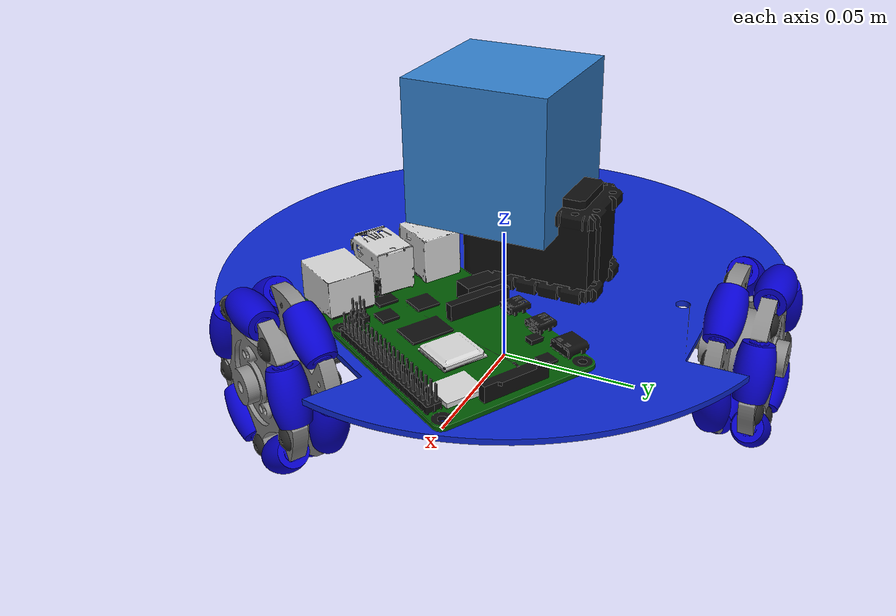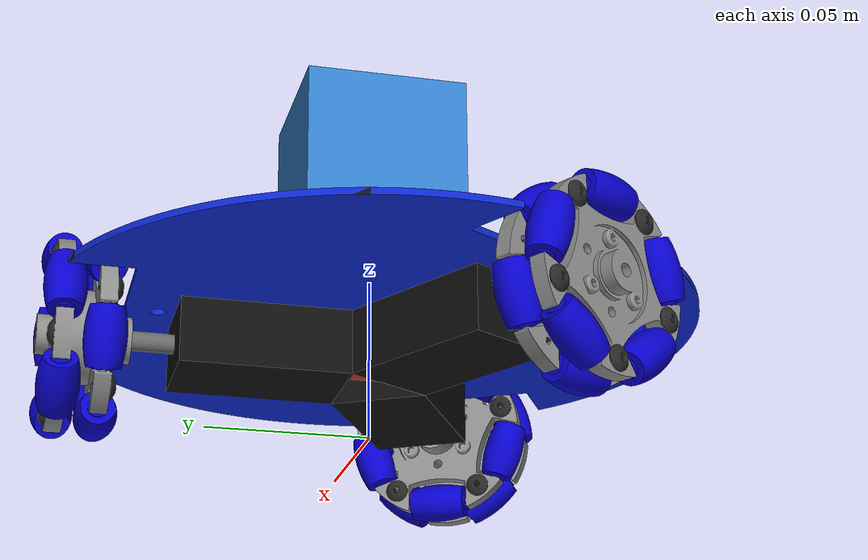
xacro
<?xml version="1.0"?>
<robot xmlns:xacro="http://www.ros.org/wiki/xacro" name="omni_with_front_cam_imu">
  <xacro:arg name="sensor_namespace" default="omni"/>
  <xacro:include filename="$(find simple_rbt)/model/omni/omni_robot.urdf.xacro"/>
  <xacro:include filename="$(find simple_rbt)/model/sensor/simple_front_cam_imu/model.xacro"/>
  <xacro:simple_front_cam_imu parent_link="base_link" xyz="0.0 0.0 0.05" rpy="0 0 0" sensor_namespace="$(arg sensor_namespace)" />
</robot>

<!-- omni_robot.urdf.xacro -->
<robot name="omni_robot" xmlns:xacro="http://ros.org/wiki/xacro">

  <!-- xacro property -->
  <xacro:property name="M_PI" value="3.14159274"/>

  <!-- xacro include file -->
  <xacro:include filename="$(find simple_rbt)/model/omni/urdf/base/base.urdf.xacro"/>  <!--base-->
  <xacro:include filename="$(find simple_rbt)/model/omni/urdf/omni_wheel/omni_wheel.urdf.xacro"/>   <!--omni-wheel-->
  <xacro:include filename="$(find simple_rbt)/model/omni/urdf/roller/roller.urdf.xacro"/>   <!--roller-->

  <!-- =============== Link & Joint =============== -->
  <!-- Base -->
  <link name="base_footprint"/>
  <xacro:base_v0 parent="base_footprint">
        <origin xyz="0 0 0.035" rpy="0 0 0" />
  </xacro:base_v0>

  <!-- Wheel -->
  <!-- 1st wheel -->
  <xacro:wheel_v0 prefix="first" parent="base_link">
	<origin xyz="0 0.088 -0.01" rpy="0 0 3.141593"/>
	<axis xyz="0 1 0"/>
  </xacro:wheel_v0>

  <xacro:roller_v0 prefix="r1_F" parent="first_wheel_link">
	<origin xyz="0 -0.006 0.024063" rpy="0 0 1.570796"/>
	<axis xyz="0 1 0"/>
  </xacro:roller_v0>
  <xacro:roller_v0 prefix="r2_F" parent="first_wheel_link">
	<origin xyz="-0.0228853 -0.006 0.0074359" rpy="-1.256637 0 1.570796"/>
	<axis xyz="0 1 0"/>
  </xacro:roller_v0>
  <xacro:roller_v0 prefix="r3_F" parent="first_wheel_link">
	<origin xyz="-0.0141439 -0.006 -0.0194674" rpy="-2.513274 0 1.570796"/>
	<axis xyz="0 1 0"/>
  </xacro:roller_v0>
  <xacro:roller_v0 prefix="r4_F" parent="first_wheel_link">
	<origin xyz="0.0141439 -0.006 -0.0194674" rpy="-3.769911 0 1.570796"/>
	<axis xyz="0 1 0"/>
  </xacro:roller_v0>
  <xacro:roller_v0 prefix="r5_F" parent="first_wheel_link">
	<origin xyz="0.0228853 -0.006 0.0074359" rpy="-5.026548 0 1.570796"/>
	<axis xyz="0 1 0"/>
  </xacro:roller_v0>

  <xacro:roller_v0 prefix="r6_F" parent="first_wheel_link">
	<origin xyz="0 0.006 -0.024063" rpy="0 0 1.570796"/>
	<axis xyz="0 1 0"/>
  </xacro:roller_v0>
  <xacro:roller_v0 prefix="r7_F" parent="first_wheel_link">
	<origin xyz="0.0228853 0.006 -0.0074359" rpy="-1.256637 0 1.570796"/>
	<axis xyz="0 1 0"/>
  </xacro:roller_v0>
  <xacro:roller_v0 prefix="r8_F" parent="first_wheel_link">
	<origin xyz="0.0141439 0.006 0.0194674" rpy="-2.513274 0 1.570796"/>
	<axis xyz="0 1 0"/>
  </xacro:roller_v0>
  <xacro:roller_v0 prefix="r9_F" parent="first_wheel_link">
	<origin xyz="-0.0141439 0.006 0.0194674" rpy="-3.769911 0 1.570796"/>
	<axis xyz="0 1 0"/>
  </xacro:roller_v0>
  <xacro:roller_v0 prefix="r10_F" parent="first_wheel_link">
	<origin xyz="-0.0228853 0.006 -0.0074359" rpy="-5.026548 0 1.570796"/>
	<axis xyz="0 1 0"/>
  </xacro:roller_v0>

  <!-- 2nd wheel -->
  <xacro:wheel_v0 prefix="second" parent="base_link">
	<origin xyz="-0.0762 -0.044 -0.01" rpy="0 0 5.235988" />
	<axis xyz="0 1 0"/>
  </xacro:wheel_v0>

  <xacro:roller_v0 prefix="r1_S" parent="second_wheel_link">
	<origin xyz="0 -0.006 0.024063" rpy="0 0 1.570796"/>
	<axis xyz="0 1 0"/>
  </xacro:roller_v0>
  <xacro:roller_v0 prefix="r2_S" parent="second_wheel_link">
	<origin xyz="-0.0228853 -0.006 0.0074359" rpy="-1.256637 0 1.570796"/>
	<axis xyz="0 1 0"/>
  </xacro:roller_v0>
  <xacro:roller_v0 prefix="r3_S" parent="second_wheel_link">
	<origin xyz="-0.0141439 -0.006 -0.0194674" rpy="-2.513274 0 1.570796"/>
	<axis xyz="0 1 0"/>
  </xacro:roller_v0>
  <xacro:roller_v0 prefix="r4_S" parent="second_wheel_link">
	<origin xyz="0.0141439 -0.006 -0.0194674" rpy="-3.769911 0 1.570796"/>
	<axis xyz="0 1 0"/>
  </xacro:roller_v0>
  <xacro:roller_v0 prefix="r5_S" parent="second_wheel_link">
	<origin xyz="0.0228853 -0.006 0.0074359" rpy="-5.026548 0 1.570796"/>
	<axis xyz="0 1 0"/>
  </xacro:roller_v0>

  <xacro:roller_v0 prefix="r6_S" parent="second_wheel_link">
	<origin xyz="0 0.006 -0.024063" rpy="0 0 1.570796"/>
	<axis xyz="0 1 0"/>
  </xacro:roller_v0>
  <xacro:roller_v0 prefix="r7_S" parent="second_wheel_link">
	<origin xyz="0.0228853 0.006 -0.0074359" rpy="-1.256637 0 1.570796"/>
	<axis xyz="0 1 0"/>
  </xacro:roller_v0>
  <xacro:roller_v0 prefix="r8_S" parent="second_wheel_link">
	<origin xyz="0.0141439 0.006 0.0194674" rpy="-2.513274 0 1.570796"/>
	<axis xyz="0 1 0"/>
  </xacro:roller_v0>
  <xacro:roller_v0 prefix="r9_S" parent="second_wheel_link">
	<origin xyz="-0.0141439 0.006 0.0194674" rpy="-3.769911 0 1.570796"/>
	<axis xyz="0 1 0"/>
  </xacro:roller_v0>
  <xacro:roller_v0 prefix="r10_S" parent="second_wheel_link">
	<origin xyz="-0.0228853 0.006 -0.0074359" rpy="-5.026548 0 1.570796"/>
	<axis xyz="0 1 0"/>
  </xacro:roller_v0>

<!-- 3rd wheel -->
  <xacro:wheel_v0 prefix="third" parent="base_link">
	<origin xyz="0.0762 -0.044 -0.01" rpy="0 0 1.047197" />
	<axis xyz="0 1 0"/>
  </xacro:wheel_v0>

  <xacro:roller_v0 prefix="r1_T" parent="third_wheel_link">
	<origin xyz="0 -0.006 0.024063" rpy="0 0 1.570796"/>
	<axis xyz="0 1 0"/>
  </xacro:roller_v0>
  <xacro:roller_v0 prefix="r2_T" parent="third_wheel_link">
	<origin xyz="-0.0228853 -0.006 0.0074359" rpy="-1.256637 0 1.570796"/>
	<axis xyz="0 1 0"/>
  </xacro:roller_v0>
  <xacro:roller_v0 prefix="r3_T" parent="third_wheel_link">
	<origin xyz="-0.0141439 -0.006 -0.0194674" rpy="-2.513274 0 1.570796"/>
	<axis xyz="0 1 0"/>
  </xacro:roller_v0>
  <xacro:roller_v0 prefix="r4_T" parent="third_wheel_link">
	<origin xyz="0.0141439 -0.006 -0.0194674" rpy="-3.769911 0 1.570796"/>
	<axis xyz="0 1 0"/>
  </xacro:roller_v0>
  <xacro:roller_v0 prefix="r5_T" parent="third_wheel_link">
	<origin xyz="0.0228853 -0.006 0.0074359" rpy="-5.026548 0 1.570796"/>
	<axis xyz="0 1 0"/>
  </xacro:roller_v0>

  <xacro:roller_v0 prefix="r6_T" parent="third_wheel_link">
	<origin xyz="0 0.006 -0.024063" rpy="0 0 1.570796"/>
	<axis xyz="0 1 0"/>
  </xacro:roller_v0>
  <xacro:roller_v0 prefix="r7_T" parent="third_wheel_link">
	<origin xyz="0.0228853 0.006 -0.0074359" rpy="-1.256637 0 1.570796"/>
	<axis xyz="0 1 0"/>
  </xacro:roller_v0>
  <xacro:roller_v0 prefix="r8_T" parent="third_wheel_link">
	<origin xyz="0.0141439 0.006 0.0194674" rpy="-2.513274 0 1.570796"/>
	<axis xyz="0 1 0"/>
  </xacro:roller_v0>
  <xacro:roller_v0 prefix="r9_T" parent="third_wheel_link">
	<origin xyz="-0.0141439 0.006 0.0194674" rpy="-3.769911 0 1.570796"/>
	<axis xyz="0 1 0"/>
  </xacro:roller_v0>
  <xacro:roller_v0 prefix="r10_T" parent="third_wheel_link">
	<origin xyz="-0.0228853 0.006 -0.0074359" rpy="-5.026548 0 1.570796"/>
	<axis xyz="0 1 0"/>
  </xacro:roller_v0>

  <!-- ===============  Transmission =============== -->
  <xacro:wheel_trans_v0 prefix="first"/>
  <xacro:wheel_trans_v0 prefix="second"/>
  <xacro:wheel_trans_v0 prefix="third"/>
  <!-- =============== Gazebo =============== -->
  <gazebo>
    <plugin name="gazebo_ros_control" filename="libgazebo_ros_control.so">
      <robotNamespace>$(arg robot_namespace)</robotNamespace>
    </plugin>
  </gazebo>

  <!-- Base -->
  <xacro:base_gazebo_v0/>

  <!-- Wheel -->
  <xacro:wheel_gazebo_v0 prefix="first"/>
  <xacro:wheel_gazebo_v0 prefix="second"/>
  <xacro:wheel_gazebo_v0 prefix="third"/>
</robot>

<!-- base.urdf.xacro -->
<robot xmlns:xacro="http://ros.org/wiki/xacro">

  <xacro:include filename="$(find simple_rbt)/model/omni/urdf/base/base.gazebo.xacro"/>

  <xacro:macro name="base_v0" params="parent *joint_origin">
	<joint name="base_link_joint" type="fixed">
	  <xacro:insert_block name="joint_origin"/>
	  <parent link="${parent}"/>
	  <child link="base_link"/>
	</joint>

	<link name="base_link">
	  <visual>
		<geometry>
		  <mesh filename="package://simple_rbt/model/omni/meshes/DAE/base/omni_wheel_body.dae"/>
		</geometry>
	  </visual>
	  <collision>
		<geometry>
		  <mesh filename="package://simple_rbt/model/omni/meshes/STL/base/base_link.stl"/>
		</geometry>
	  </collision>
	  <inertial>
		<origin xyz="0 0 0"/>
		<mass value="1.167"/>
		<inertia ixx="0.0016" ixy="0" ixz="0" iyy="0.0016" iyz="0" izz="0.0032" />
	  </inertial>
          <surface>
            <friction>
              <ode>
                <mu>0.8</mu>
                <mu2>0.8</mu2>
                <kp>1e15</kp>
                <kd>1e13</kd>
              </ode>
            </friction>
            <bounce>
              <restitution_coefficient>0.01</restitution_coefficient>
              <threshold>10</threshold>
            </bounce>
            <contact>
              <ode>
                <max_vel>0.01</max_vel>
                <minDepth>0</minDepth>
                <contact_surface_layer>0</contact_surface_layer>
              </ode>
            </contact>
          </surface>
	</link>
  </xacro:macro>

</robot>

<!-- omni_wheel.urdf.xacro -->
<robot xmlns:xacro="http://ros.org/wiki/xacro">

  <xacro:include filename="$(find simple_rbt)/model/omni/urdf/omni_wheel/omni_wheel.transmission.xacro"/>
  <xacro:include filename="$(find simple_rbt)/model/omni/urdf/omni_wheel/omni_wheel.gazebo.xacro"/>

  <xacro:macro name="wheel_v0" params="prefix parent *joint_origin *joint_axis">
	<joint name="${prefix}_wheel_joint" type="continuous">
	  <xacro:insert_block name="joint_origin"/>
	  <parent link="${parent}"/>
	  <child link="${prefix}_wheel_link"/>
          <limit effort="100" velocity="100"/>
	  <xacro:insert_block name="joint_axis"/>
	</joint>

	<link name="${prefix}_wheel_link">
	  <visual>
		<geometry>
		  <mesh filename="package://simple_rbt/model/omni/meshes/DAE/omni_wheel/omni_wheel.dae"/>
		</geometry>
	  </visual>
	  <collision>
		<geometry>
		  <mesh filename="package://simple_rbt/model/omni/meshes/STL/omni_wheel/omni_wheel.stl"/>
		</geometry>
	  </collision>
	  <inertial>
		<origin xyz="0.0 -0.011 -0.0"/>
		<mass value="0.25"/>
		<inertia ixx="0.00031" ixy="0" ixz="0" iyy="0.0005" iyz="0" izz="0.00031"/>
	  </inertial>
          <surface>
            <friction>
              <ode>
                <mu1>1.2</mu1>
                <mu2>1.2</mu2>
                <kp>1e15</kp>
                <kd>1e13</kd>
              </ode>
            </friction>
            <bounce>
              <restitution_coefficient>0.01</restitution_coefficient>
              <threshold>0</threshold>
            </bounce>
            <contact>
              <ode>
                <max_vel>10</max_vel>
              </ode>
            </contact>
          </surface>
	</link>
  </xacro:macro>

</robot>

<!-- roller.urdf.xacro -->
<robot xmlns:xacro="http://ros.org/wiki/xacro">

  <xacro:include filename="$(find simple_rbt)/model/omni/urdf/roller/roller.transmission.xacro"/>
  <xacro:include filename="$(find simple_rbt)/model/omni/urdf/roller/roller.gazebo.xacro"/>

  <xacro:macro name="roller_v0" params="prefix parent *joint_origin *joint_axis">
	<joint name="${prefix}_roller_joint" type="continuous">
	  <xacro:insert_block name="joint_origin"/>
	  <parent link="${parent}"/>
	  <child link="${prefix}_roller_link"/>
	  <xacro:insert_block name="joint_axis"/>
	</joint>

	<link name="${prefix}_roller_link">
	  <visual>
		<geometry>
		  <mesh filename="package://simple_rbt/model/omni/meshes/DAE/roller/omni_roller.dae"/>
		</geometry>
	  </visual>
	  <collision>
		<geometry>
		  <mesh filename="package://simple_rbt/model/omni/meshes/STL/roller/roller.stl"/>
		</geometry>
	  </collision>
	  <inertial>
		<origin xyz="0.0 0.0 0.0"/>
		<mass value="0.009"/>
		<inertia ixx="0.000001257" ixy="0" ixz="0" iyy="0.000000342" iyz="0" izz="0.000001257"/>
	  </inertial>
          <surface>
            <friction>
              <ode>
                <mu1>1.2</mu1>
                <mu2>1.2</mu2>
                <kp>1e15</kp>
                <kd>1e13</kd>
              </ode>
            </friction>
            <bounce>
              <restitution_coefficient>0.01</restitution_coefficient>
              <threshold>0</threshold>
            </bounce>
            <contact>
              <ode>
                <max_vel>10</max_vel>
              </ode>
            </contact>
          </surface>
	</link>
  </xacro:macro>

</robot>

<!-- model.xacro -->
<robot xmlns:xacro="http://www.ros.org/wiki/xacro">

    <xacro:macro name="simple_front_cam_imu" params="parent_link xyz rpy sensor_namespace">

        <link name="camera_link">
            <inertial>
                <mass value="0.15"/>
                <inertia ixx="0.0001" ixy="0.0" ixz="0.0" iyy="0.0001" iyz="0.0" izz="0.0001"/>
            </inertial>

            <visual name="camera_visual">
                <geometry>
                    <box size="0.05 0.05 0.05"/>
                </geometry>
                <material name="blue_cam">
                    <color rgba="0.2 0.5 0.8 1"/>
                </material>
            </visual>

            <collision name="camera_collision">
                <geometry>
                    <box size="0.05 0.05 0.05"/>
                </geometry>
            </collision>
        </link>

        <link name="imu_link">
            <inertial>
                <mass value="0.01"/>
                <inertia ixx="1e-6" ixy="0.0" ixz="0.0" iyy="1e-6" iyz="0.0" izz="1e-6"/>
            </inertial>

            <visual name="imu_visual">
                <geometry>
                    <box size="0.01 0.01 0.01"/>
                </geometry>
                <material name="red_imu">
                    <color rgba="0.8 0.2 0.2 1"/>
                </material>
            </visual>
        </link>

        <joint name="camera_mount_joint" type="fixed">
            <parent link="${parent_link}"/>
            <child link="camera_link"/>
            <origin xyz="${xyz}" rpy="${rpy}"/>
        </joint>

        <joint name="camera_imu_joint" type="fixed">
            <parent link="camera_link"/>
            <child link="imu_link"/>
            <origin xyz="0 0 -0.06" rpy="0 0 0"/>
        </joint>

        <gazebo reference="camera_link">
            <sensor name="front_camera" type="camera">
                <pose>0 0 0 0 0 0</pose>
                <always_on>true</always_on>
                <update_rate>30</update_rate>
                <visualize>true</visualize>

                <camera>
                    <horizontal_fov>1.5708</horizontal_fov> <image>
                        <width>640</width>
                        <height>480</height>
                        <format>R8G8B8</format>
                    </image>
                    <clip>
                        <near>0.05</near>
                        <far>50.0</far>
                    </clip>
                </camera>

                <plugin name="camera_controller" filename="libgazebo_ros_camera.so">
                    <robotNamespace>${sensor_namespace}</robotNamespace>
                    <cameraName>camera</cameraName>
                    <imageTopicName>image_raw</imageTopicName>
                    <cameraInfoTopicName>camera_info</cameraInfoTopicName>
                    <frameName>camera_link</frameName>
                    <updateRate>30.0</updateRate>
                    <alwaysOn>true</alwaysOn>
                </plugin>
            </sensor>

            <material>Gazebo/Blue</material>
        </gazebo>

        <gazebo reference="imu_link">
            <sensor name="imu_sensor" type="imu">
                <pose>0 0 0 0 0 0</pose>
                <always_on>true</always_on>
                <update_rate>200</update_rate>
                <visualize>true</visualize>

                <plugin filename="libgazebo_ros_imu_sensor.so" name="imu_plugin">
                    <robotNamespace>${sensor_namespace}</robotNamespace>
                    <topicName>camera/imu</topicName>
                    <bodyName>imu_link</bodyName>
                    <updateRateHZ>200.0</updateRateHZ>
                    <gaussianNoise>0.0</gaussianNoise>
                    <xyzOffset>0 0 0</xyzOffset>
                    <rpyOffset>0 0 0</rpyOffset>
                    <frameName>imu_link</frameName>
                </plugin>
            </sensor>

            <material>Gazebo/Red</material>
        </gazebo>

    </xacro:macro>

</robot>
